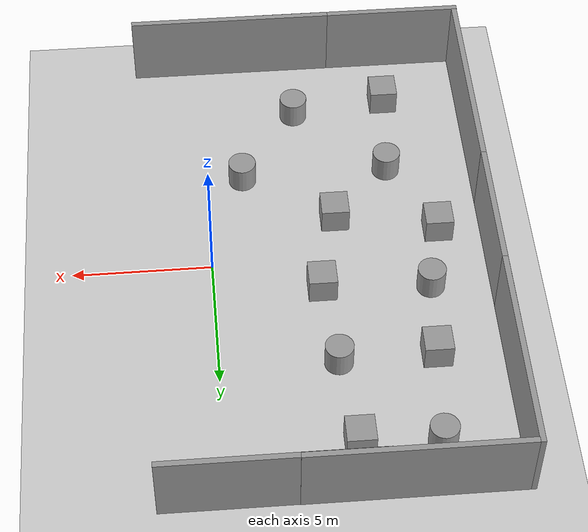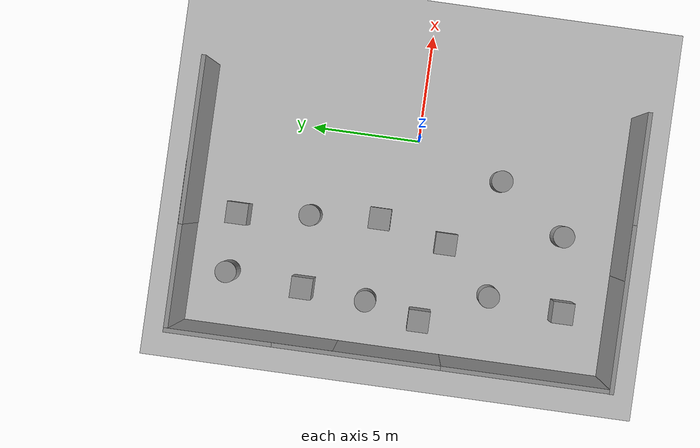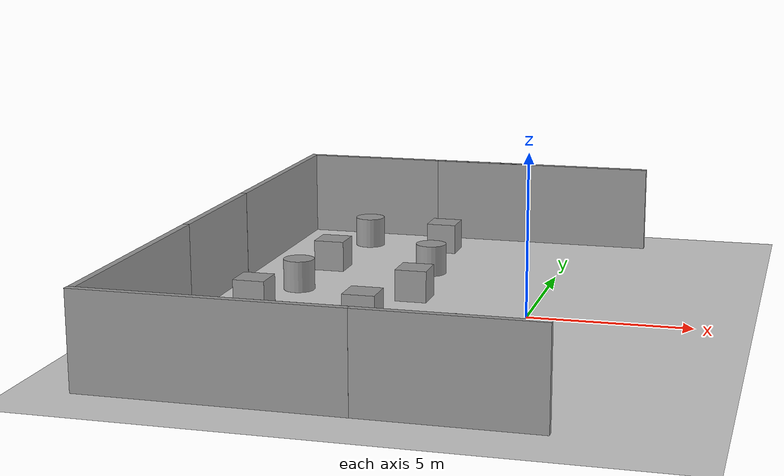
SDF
<sdf version="1.6">
 <world name="default">
  <model name="ground_plane">
   <static>1</static>
   <link name="link">
    <collision name="collision">
     <geometry><plane><normal>0 0 1</normal><size>100 100</size></plane></geometry>
     <surface><friction><ode><mu>100</mu><mu2>50</mu2></ode></friction></surface>
    </collision>
    <visual name="visual">
     <cast_shadows>0</cast_shadows>
     <geometry><plane><normal>0 0 1</normal><size>100 100</size></plane></geometry>
     <material>
      <script><uri>file://media/materials/scripts/gazebo.material</uri><name>Gazebo/Grey</name></script>
     </material>
    </visual>
   </link>
  </model>
  <model name="grey_wall">
   <static>1</static>
   <link name="link">
    <pose>0 0 1.4 0 -0 0</pose>
    <collision name="collision"><geometry><box><size>7.5 0.2 2.8</size></box></geometry></collision>
    <visual name="visual">
     <cast_shadows>0</cast_shadows>
     <geometry><box><size>7.5 0.2 2.8</size></box></geometry>
     <material>
      <script>
       <uri>model://grey_wall/materials/scripts</uri>
       <uri>model://grey_wall/materials/textures</uri>
       <name>vrc/grey_wall</name>
      </script>
     </material>
    </visual>
   </link>
   <pose>-6.25606 -9.89102 0 0 -0 0</pose>
  </model>
  <model name="grey_wall_clone_0">
   <static>1</static>
   <link name="link">
    <pose>0 0 1.4 0 -0 0</pose>
    <collision name="collision"><geometry><box><size>7.5 0.2 2.8</size></box></geometry></collision>
    <visual name="visual">
     <cast_shadows>0</cast_shadows>
     <geometry><box><size>7.5 0.2 2.8</size></box></geometry>
     <material>
      <script>
       <uri>model://grey_wall/materials/scripts</uri>
       <uri>model://grey_wall/materials/textures</uri>
       <name>vrc/grey_wall</name>
      </script>
     </material>
    </visual>
   </link>
   <pose>-1.2535 -9.8886 0 0 -0 0</pose>
  </model>
  <model name="grey_wall_clone_1">
   <static>1</static>
   <link name="link">
    <pose>0 0 1.4 0 -0 0</pose>
    <collision name="collision"><geometry><box><size>7.5 0.2 2.8</size></box></geometry></collision>
    <visual name="visual">
     <cast_shadows>0</cast_shadows>
     <geometry><box><size>7.5 0.2 2.8</size></box></geometry>
     <material>
      <script>
       <uri>model://grey_wall/materials/scripts</uri>
       <uri>model://grey_wall/materials/textures</uri>
       <name>vrc/grey_wall</name>
      </script>
     </material>
    </visual>
   </link>
   <pose>-9.8979 -6.04727 0 0 0 -1.57064</pose>
  </model>
  <model name="grey_wall_clone_1_clone">
   <static>1</static>
   <link name="link">
    <pose>0 0 1.4 0 -0 0</pose>
    <collision name="collision"><geometry><box><size>7.5 0.2 2.8</size></box></geometry></collision>
    <visual name="visual">
     <cast_shadows>0</cast_shadows>
     <geometry><box><size>7.5 0.2 2.8</size></box></geometry>
     <material>
      <script>
       <uri>model://grey_wall/materials/scripts</uri>
       <uri>model://grey_wall/materials/textures</uri>
       <name>vrc/grey_wall</name>
      </script>
     </material>
    </visual>
   </link>
   <pose>-9.8994 1.4509 0 0 0 -1.57064</pose>
  </model>
  <model name="grey_wall_clone_1_clone_0">
   <static>1</static>
   <link name="link">
    <pose>0 0 1.4 0 -0 0</pose>
    <collision name="collision"><geometry><box><size>7.5 0.2 2.8</size></box></geometry></collision>
    <visual name="visual">
     <cast_shadows>0</cast_shadows>
     <geometry><box><size>7.5 0.2 2.8</size></box></geometry>
     <material>
      <script>
       <uri>model://grey_wall/materials/scripts</uri>
       <uri>model://grey_wall/materials/textures</uri>
       <name>vrc/grey_wall</name>
      </script>
     </material>
    </visual>
   </link>
   <pose>-9.89865 6.24782 0 0 0 -1.57064</pose>
  </model>
  <model name="grey_wall_clone_clone_0">
   <static>1</static>
   <link name="link">
    <pose>0 0 1.4 0 -0 0</pose>
    <collision name="collision"><geometry><box><size>7.5 0.2 2.8</size></box></geometry></collision>
    <visual name="visual">
     <cast_shadows>0</cast_shadows>
     <geometry><box><size>7.5 0.2 2.8</size></box></geometry>
     <material>
      <script>
       <uri>model://grey_wall/materials/scripts</uri>
       <uri>model://grey_wall/materials/textures</uri>
       <name>vrc/grey_wall</name>
      </script>
     </material>
    </visual>
   </link>
   <pose>-1.44131 9.88821 0 0 -0 0</pose>
  </model>
  <model name="grey_wall_clone_clone_1">
   <static>1</static>
   <link name="link">
    <pose>0 0 1.4 0 -0 0</pose>
    <collision name="collision"><geometry><box><size>7.5 0.2 2.8</size></box></geometry></collision>
    <visual name="visual">
     <cast_shadows>0</cast_shadows>
     <geometry><box><size>7.5 0.2 2.8</size></box></geometry>
     <material>
      <script>
       <uri>model://grey_wall/materials/scripts</uri>
       <uri>model://grey_wall/materials/textures</uri>
       <name>vrc/grey_wall</name>
      </script>
     </material>
    </visual>
   </link>
   <pose>-6.06557 9.89915 0 0 -0 0</pose>
  </model>
  <model name="unit_cylinder_clone_0">
   <static>1</static>
   <pose>-4.10219 4.52539 0.499997 3e-06 4e-06 -0</pose>
   <link name="link">
    <inertial>
     <mass>1</mass>
     <inertia><ixx>0.145833</ixx><ixy>0</ixy><ixz>0</ixz><iyy>0.145833</iyy><iyz>0</iyz><izz>0.125</izz></inertia>
    </inertial>
    <collision name="collision">
     <geometry><cylinder><radius>0.5</radius><length>1</length></cylinder></geometry>
    </collision>
    <visual name="visual">
     <geometry><cylinder><radius>0.5</radius><length>1</length></cylinder></geometry>
     <material>
      <script><name>Gazebo/Grey</name><uri>file://media/materials/scripts/gazebo.material</uri></script>
     </material>
    </visual>
   </link>
  </model>
  <model name="unit_cylinder_clone_1">
   <static>1</static>
   <pose>-3.48379 -7.22626 0.499997 3e-06 4e-06 -0</pose>
   <link name="link">
    <inertial>
     <mass>1</mass>
     <inertia><ixx>0.145833</ixx><ixy>0</ixy><ixz>0</ixz><iyy>0.145833</iyy><iyz>0</iyz><izz>0.125</izz></inertia>
    </inertial>
    <collision name="collision">
     <geometry><cylinder><radius>0.5</radius><length>1</length></cylinder></geometry>
    </collision>
    <visual name="visual">
     <geometry><cylinder><radius>0.5</radius><length>1</length></cylinder></geometry>
     <material>
      <script><name>Gazebo/Grey</name><uri>file://media/materials/scripts/gazebo.material</uri></script>
     </material>
    </visual>
   </link>
  </model>
  <model name="unit_cylinder_clone_2">
   <static>1</static>
   <pose>-1.33478 -4.06057 0.499997 3e-06 4e-06 -0</pose>
   <link name="link">
    <inertial>
     <mass>1</mass>
     <inertia><ixx>0.145833</ixx><ixy>0</ixy><ixz>0</ixz><iyy>0.145833</iyy><iyz>0</iyz><izz>0.125</izz></inertia>
    </inertial>
    <collision name="collision">
     <geometry><cylinder><radius>0.5</radius><length>1</length></cylinder></geometry>
    </collision>
    <visual name="visual">
     <geometry><cylinder><radius>0.5</radius><length>1</length></cylinder></geometry>
     <material>
      <script><name>Gazebo/Grey</name><uri>file://media/materials/scripts/gazebo.material</uri></script>
     </material>
    </visual>
   </link>
  </model>
  <model name="unit_cylinder_clone_7">
   <static>1</static>
   <pose>-6.71083 -4.18406 0.499997 3e-06 4e-06 -0</pose>
   <link name="link">
    <inertial>
     <mass>1</mass>
     <inertia><ixx>0.145833</ixx><ixy>0</ixy><ixz>0</ixz><iyy>0.145833</iyy><iyz>0</iyz><izz>0.125</izz></inertia>
    </inertial>
    <collision name="collision">
     <geometry><cylinder><radius>0.5</radius><length>1</length></cylinder></geometry>
    </collision>
    <visual name="visual">
     <geometry><cylinder><radius>0.5</radius><length>1</length></cylinder></geometry>
     <material>
      <script><name>Gazebo/Grey</name><uri>file://media/materials/scripts/gazebo.material</uri></script>
     </material>
    </visual>
   </link>
  </model>
  <model name="unit_cylinder_clone_8">
   <static>1</static>
   <pose>-7.67272 1.45664 0.499997 3e-06 4e-06 -0</pose>
   <link name="link">
    <inertial>
     <mass>1</mass>
     <inertia><ixx>0.145833</ixx><ixy>0</ixy><ixz>0</ixz><iyy>0.145833</iyy><iyz>0</iyz><izz>0.125</izz></inertia>
    </inertial>
    <collision name="collision">
     <geometry><cylinder><radius>0.5</radius><length>1</length></cylinder></geometry>
    </collision>
    <visual name="visual">
     <geometry><cylinder><radius>0.5</radius><length>1</length></cylinder></geometry>
     <material>
      <script><name>Gazebo/Grey</name><uri>file://media/materials/scripts/gazebo.material</uri></script>
     </material>
    </visual>
   </link>
  </model>
  <model name="unit_cylinder_clone_9">
   <static>1</static>
   <pose>-7.21553 7.99498 0.499997 3e-06 4e-06 -0</pose>
   <link name="link">
    <inertial>
     <mass>1</mass>
     <inertia><ixx>0.145833</ixx><ixy>0</ixy><ixz>0</ixz><iyy>0.145833</iyy><iyz>0</iyz><izz>0.125</izz></inertia>
    </inertial>
    <collision name="collision">
     <geometry><cylinder><radius>0.5</radius><length>1</length></cylinder></geometry>
    </collision>
    <visual name="visual">
     <geometry><cylinder><radius>0.5</radius><length>1</length></cylinder></geometry>
     <material>
      <script><name>Gazebo/Grey</name><uri>file://media/materials/scripts/gazebo.material</uri></script>
     </material>
    </visual>
   </link>
  </model>
  <model name="unit_box_clone_0">
   <static>1</static>
   <pose>-4.55563 -1.88118 0.499995 -1e-05 0 0</pose>
   <link name="link">
    <inertial>
     <mass>1</mass>
     <inertia>
      <ixx>0.166667</ixx>
      <ixy>0</ixy>
      <ixz>0</ixz>
      <iyy>0.166667</iyy>
      <iyz>0</iyz>
      <izz>0.166667</izz>
     </inertia>
    </inertial>
    <collision name="collision"><geometry><box><size>1 1 1</size></box></geometry></collision>
    <visual name="visual">
     <geometry><box><size>1 1 1</size></box></geometry>
     <material>
      <script><name>Gazebo/Grey</name><uri>file://media/materials/scripts/gazebo.material</uri></script>
     </material>
    </visual>
   </link>
  </model>
  <model name="unit_box_clone_3">
   <static>1</static>
   <pose>-4.46784 7.86157 0.499995 -1e-05 0 0</pose>
   <link name="link">
    <inertial>
     <mass>1</mass>
     <inertia>
      <ixx>0.166667</ixx>
      <ixy>0</ixy>
      <ixz>0</ixz>
      <iyy>0.166667</iyy>
      <iyz>0</iyz>
      <izz>0.166667</izz>
     </inertia>
    </inertial>
    <collision name="collision"><geometry><box><size>1 1 1</size></box></geometry></collision>
    <visual name="visual">
     <geometry><box><size>1 1 1</size></box></geometry>
     <material>
      <script><name>Gazebo/Grey</name><uri>file://media/materials/scripts/gazebo.material</uri></script>
     </material>
    </visual>
   </link>
  </model>
  <model name="unit_box_clone_4">
   <static>1</static>
   <pose>-7.47947 4.44614 0.499995 -1e-05 0 0</pose>
   <link name="link">
    <inertial>
     <mass>1</mass>
     <inertia>
      <ixx>0.166667</ixx>
      <ixy>0</ixy>
      <ixz>0</ixz>
      <iyy>0.166667</iyy>
      <iyz>0</iyz>
      <izz>0.166667</izz>
     </inertia>
    </inertial>
    <collision name="collision"><geometry><box><size>1 1 1</size></box></geometry></collision>
    <visual name="visual">
     <geometry><box><size>1 1 1</size></box></geometry>
     <material>
      <script><name>Gazebo/Grey</name><uri>file://media/materials/scripts/gazebo.material</uri></script>
     </material>
    </visual>
   </link>
  </model>
  <model name="unit_box_clone_8">
   <static>1</static>
   <pose>-6.96525 -7.66745 0.499995 -1e-05 0 0</pose>
   <link name="link">
    <inertial>
     <mass>1</mass>
     <inertia>
      <ixx>0.166667</ixx>
      <ixy>0</ixy>
      <ixz>0</ixz>
      <iyy>0.166667</iyy>
      <iyz>0</iyz>
      <izz>0.166667</izz>
     </inertia>
    </inertial>
    <collision name="collision"><geometry><box><size>1 1 1</size></box></geometry></collision>
    <visual name="visual">
     <geometry><box><size>1 1 1</size></box></geometry>
     <material>
      <script><name>Gazebo/Grey</name><uri>file://media/materials/scripts/gazebo.material</uri></script>
     </material>
    </visual>
   </link>
  </model>
  <model name="unit_box_clone_9">
   <static>1</static>
   <pose>-8.24819 -1.11463 0.499995 -1e-05 0 0</pose>
   <link name="link">
    <inertial>
     <mass>1</mass>
     <inertia>
      <ixx>0.166667</ixx>
      <ixy>0</ixy>
      <ixz>0</ixz>
      <iyy>0.166667</iyy>
      <iyz>0</iyz>
      <izz>0.166667</izz>
     </inertia>
    </inertial>
    <collision name="collision"><geometry><box><size>1 1 1</size></box></geometry></collision>
    <visual name="visual">
     <geometry><box><size>1 1 1</size></box></geometry>
     <material>
      <script><name>Gazebo/Grey</name><uri>file://media/materials/scripts/gazebo.material</uri></script>
     </material>
    </visual>
   </link>
  </model>
  <model name="unit_box_clone_10">
   <static>1</static>
   <pose>-3.81773 1.2984 0.499995 -1e-05 0 0</pose>
   <link name="link">
    <inertial>
     <mass>1</mass>
     <inertia>
      <ixx>0.166667</ixx>
      <ixy>0</ixy>
      <ixz>0</ixz>
      <iyy>0.166667</iyy>
      <iyz>0</iyz>
      <izz>0.166667</izz>
     </inertia>
    </inertial>
    <collision name="collision"><geometry><box><size>1 1 1</size></box></geometry></collision>
    <visual name="visual">
     <geometry><box><size>1 1 1</size></box></geometry>
     <material>
      <script><name>Gazebo/Grey</name><uri>file://media/materials/scripts/gazebo.material</uri></script>
     </material>
    </visual>
   </link>
  </model>
 </world>
</sdf>
